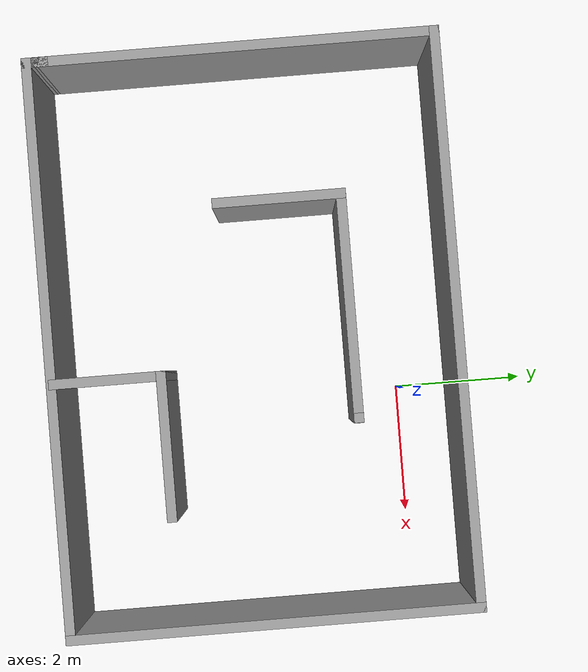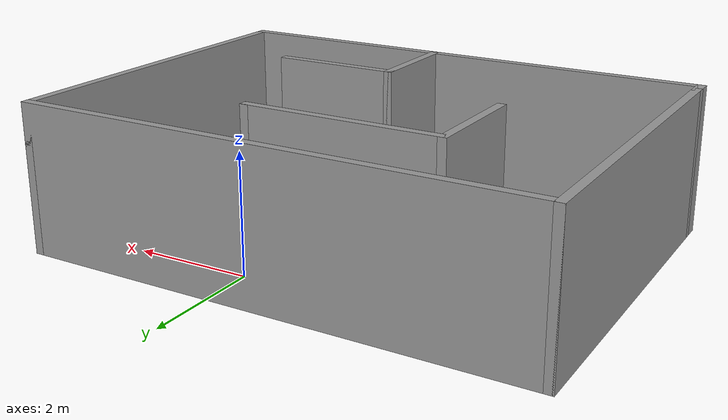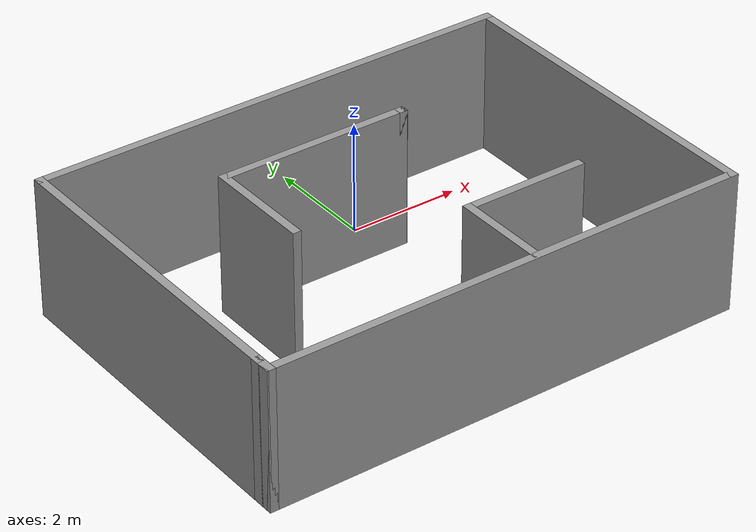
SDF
<?xml version='1.0'?>
<sdf version='1.7'>
  <model name='test_world'>
    <pose>-0.972369 -2.19123 0 0 -0 0</pose>
    <link name='Wall_0'>
      <collision name='Wall_0_Collision'>
        <geometry>
          <box>
            <size>6 0.15 2.5</size>
          </box>
        </geometry>
        <pose>0 0 1.25 0 -0 0</pose>
      </collision>
      <visual name='Wall_0_Visual'>
        <pose>0 0 1.25 0 -0 0</pose>
        <geometry>
          <box>
            <size>6 0.15 2.5</size>
          </box>
        </geometry>
        <material>
          <script>
            <uri>file://media/materials/scripts/gazebo.material</uri>
            <name>Gazebo/Grey</name>
          </script>
          <ambient>1 1 1 1</ambient>
        </material>
        <meta>
          <layer>0</layer>
        </meta>
      </visual>
      <pose>-4.3 0.125 0 0 -0 1.5708</pose>
    </link>
    <link name='Wall_1'>
      <collision name='Wall_1_Collision'>
        <geometry>
          <box>
            <size>8.75 0.15 2.5</size>
          </box>
        </geometry>
        <pose>0 0 1.25 0 -0 0</pose>
      </collision>
      <visual name='Wall_1_Visual'>
        <pose>0 0 1.25 0 -0 0</pose>
        <geometry>
          <box>
            <size>8.75 0.15 2.5</size>
          </box>
        </geometry>
        <material>
          <script>
            <uri>file://media/materials/scripts/gazebo.material</uri>
            <name>Gazebo/Grey</name>
          </script>
          <ambient>1 1 1 1</ambient>
        </material>
        <meta>
          <layer>0</layer>
        </meta>
      </visual>
      <pose>0 3.05 0 0 -0 0</pose>
    </link>
    <link name='Wall_10'>
      <collision name='Wall_10_Collision'>
        <geometry>
          <box>
            <size>0.15 0.15 2.5</size>
          </box>
        </geometry>
        <pose>0 0 1.25 0 -0 0</pose>
      </collision>
      <visual name='Wall_10_Visual'>
        <pose>0 0 1.25 0 -0 0</pose>
        <geometry>
          <box>
            <size>0.15 0.15 2.5</size>
          </box>
        </geometry>
        <material>
          <script>
            <uri>file://media/materials/scripts/gazebo.material</uri>
            <name>Gazebo/Grey</name>
          </script>
          <ambient>1 1 1 1</ambient>
        </material>
        <meta>
          <layer>0</layer>
        </meta>
      </visual>
      <pose>1.36173 1.46819 0 0 -0 0</pose>
    </link>
    <link name='Wall_12'>
      <collision name='Wall_12_Collision'>
        <geometry>
          <box>
            <size>1.75 0.15 2.5</size>
          </box>
        </geometry>
        <pose>0 0 1.25 0 -0 0</pose>
      </collision>
      <visual name='Wall_12_Visual'>
        <pose>0 0 1.25 0 -0 0</pose>
        <geometry>
          <box>
            <size>1.75 0.15 2.5</size>
          </box>
        </geometry>
        <material>
          <script>
            <uri>file://media/materials/scripts/gazebo.material</uri>
            <name>Gazebo/Grey</name>
          </script>
          <ambient>1 1 1 1</ambient>
        </material>
        <meta>
          <layer>0</layer>
        </meta>
      </visual>
      <pose>0.505965 -2.21292 0 0 -0 1.5708</pose>
    </link>
    <link name='Wall_13'>
      <collision name='Wall_13_Collision'>
        <geometry>
          <box>
            <size>2.25 0.15 2.5</size>
          </box>
        </geometry>
        <pose>0 0 1.25 0 -0 0</pose>
      </collision>
      <visual name='Wall_13_Visual'>
        <pose>0 0 1.25 0 -0 0</pose>
        <geometry>
          <box>
            <size>2.25 0.15 2.5</size>
          </box>
        </geometry>
        <material>
          <script>
            <uri>file://media/materials/scripts/gazebo.material</uri>
            <name>Gazebo/Grey</name>
          </script>
          <ambient>1 1 1 1</ambient>
        </material>
        <meta>
          <layer>0</layer>
        </meta>
      </visual>
      <pose>1.55597 -1.41292 0 0 -0 0</pose>
    </link>
    <link name='Wall_2'>
      <collision name='Wall_2_Collision'>
        <geometry>
          <box>
            <size>6.25 0.15 2.5</size>
          </box>
        </geometry>
        <pose>0 0 1.25 0 -0 0</pose>
      </collision>
      <visual name='Wall_2_Visual'>
        <pose>0 0 1.25 0 -0 0</pose>
        <geometry>
          <box>
            <size>6.25 0.15 2.5</size>
          </box>
        </geometry>
        <material>
          <script>
            <uri>file://media/materials/scripts/gazebo.material</uri>
            <name>Gazebo/Grey</name>
          </script>
          <ambient>1 1 1 1</ambient>
        </material>
        <meta>
          <layer>0</layer>
        </meta>
      </visual>
      <pose>4.3 -0 0 0 -0 -1.5708</pose>
    </link>
    <link name='Wall_3'>
      <collision name='Wall_3_Collision'>
        <geometry>
          <box>
            <size>8.75 0.15 2.5</size>
          </box>
        </geometry>
        <pose>0 0 1.25 0 -0 0</pose>
      </collision>
      <visual name='Wall_3_Visual'>
        <pose>0 0 1.25 0 -0 0</pose>
        <geometry>
          <box>
            <size>8.75 0.15 2.5</size>
          </box>
        </geometry>
        <material>
          <script>
            <uri>file://media/materials/scripts/gazebo.material</uri>
            <name>Gazebo/Grey</name>
          </script>
          <ambient>1 1 1 1</ambient>
        </material>
        <meta>
          <layer>0</layer>
        </meta>
      </visual>
      <pose>0 -3.05 0 0 -0 3.14159</pose>
    </link>
    <link name='Wall_4'>
      <collision name='Wall_4_Collision'>
        <geometry>
          <box>
            <size>0.4 0.15 2.5</size>
          </box>
        </geometry>
        <pose>0 0 1.25 0 -0 0</pose>
      </collision>
      <visual name='Wall_4_Visual'>
        <pose>0 0 1.25 0 -0 0</pose>
        <geometry>
          <box>
            <size>0.4 0.15 2.5</size>
          </box>
        </geometry>
        <material>
          <script>
            <uri>file://media/materials/scripts/gazebo.material</uri>
            <name>Gazebo/Grey</name>
          </script>
          <ambient>1 1 1 1</ambient>
        </material>
        <meta>
          <layer>0</layer>
        </meta>
      </visual>
      <pose>-4.3 -2.925 0 0 -0 1.5708</pose>
    </link>
    <link name='Wall_5'>
      <collision name='Wall_5_Collision'>
        <geometry>
          <box>
            <size>0.4 0.15 2.5</size>
          </box>
        </geometry>
        <pose>0 0 1.25 0 -0 0</pose>
      </collision>
      <visual name='Wall_5_Visual'>
        <pose>0 0 1.25 0 -0 0</pose>
        <geometry>
          <box>
            <size>0.4 0.15 2.5</size>
          </box>
        </geometry>
        <material>
          <script>
            <uri>file://media/materials/scripts/gazebo.material</uri>
            <name>Gazebo/Grey</name>
          </script>
          <ambient>1 1 1 1</ambient>
        </material>
        <meta>
          <layer>0</layer>
        </meta>
      </visual>
      <pose>-4.3 -2.925 0 0 -0 -1.5708</pose>
    </link>
    <link name='Wall_7'>
      <collision name='Wall_7_Collision'>
        <geometry>
          <box>
            <size>2 0.15 2.5</size>
          </box>
        </geometry>
        <pose>0 0 1.25 0 -0 0</pose>
      </collision>
      <visual name='Wall_7_Visual'>
        <pose>0 0 1.25 0 -0 0</pose>
        <geometry>
          <box>
            <size>2 0.15 2.5</size>
          </box>
        </geometry>
        <material>
          <script>
            <uri>file://media/materials/scripts/gazebo.material</uri>
            <name>Gazebo/Grey</name>
          </script>
          <ambient>1 1 1 1</ambient>
        </material>
        <meta>
          <layer>0</layer>
        </meta>
      </visual>
      <pose>-1.98827 0.543191 0 0 -0 1.5708</pose>
    </link>
    <link name='Wall_8'>
      <collision name='Wall_8_Collision'>
        <geometry>
          <box>
            <size>3.5 0.15 2.5</size>
          </box>
        </geometry>
        <pose>0 0 1.25 0 -0 0</pose>
      </collision>
      <visual name='Wall_8_Visual'>
        <pose>0 0 1.25 0 -0 0</pose>
        <geometry>
          <box>
            <size>3.5 0.15 2.5</size>
          </box>
        </geometry>
        <material>
          <script>
            <uri>file://media/materials/scripts/gazebo.material</uri>
            <name>Gazebo/Grey</name>
          </script>
          <ambient>1 1 1 1</ambient>
        </material>
        <meta>
          <layer>0</layer>
        </meta>
      </visual>
      <pose>-0.31327 1.46819 0 0 -0 0</pose>
    </link>
    <link name='Wall_9'>
      <collision name='Wall_9_Collision'>
        <geometry>
          <box>
            <size>0.15 0.15 2.5</size>
          </box>
        </geometry>
        <pose>0 0 1.25 0 -0 0</pose>
      </collision>
      <visual name='Wall_9_Visual'>
        <pose>0 0 1.25 0 -0 0</pose>
        <geometry>
          <box>
            <size>0.15 0.15 2.5</size>
          </box>
        </geometry>
        <material>
          <script>
            <uri>file://media/materials/scripts/gazebo.material</uri>
            <name>Gazebo/Grey</name>
          </script>
          <ambient>1 1 1 1</ambient>
        </material>
        <meta>
          <layer>0</layer>
        </meta>
      </visual>
      <pose>1.36173 1.46819 0 0 -0 0</pose>
    </link>
    <static>1</static>
  </model>
</sdf>
